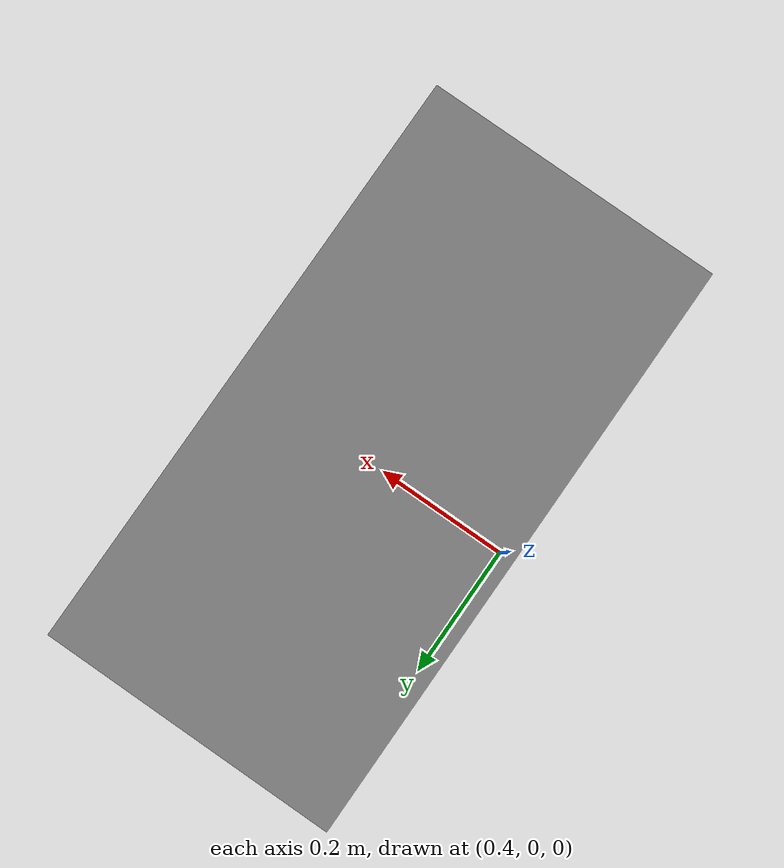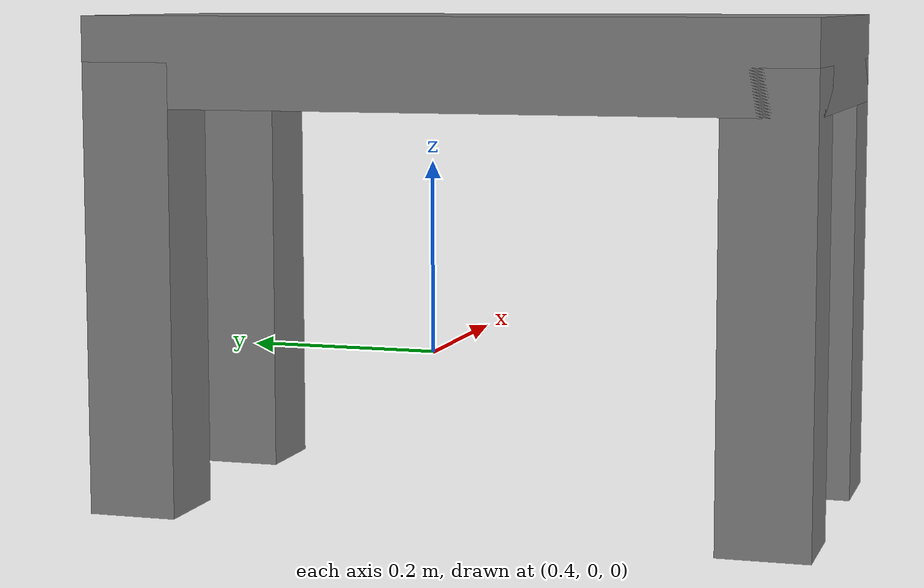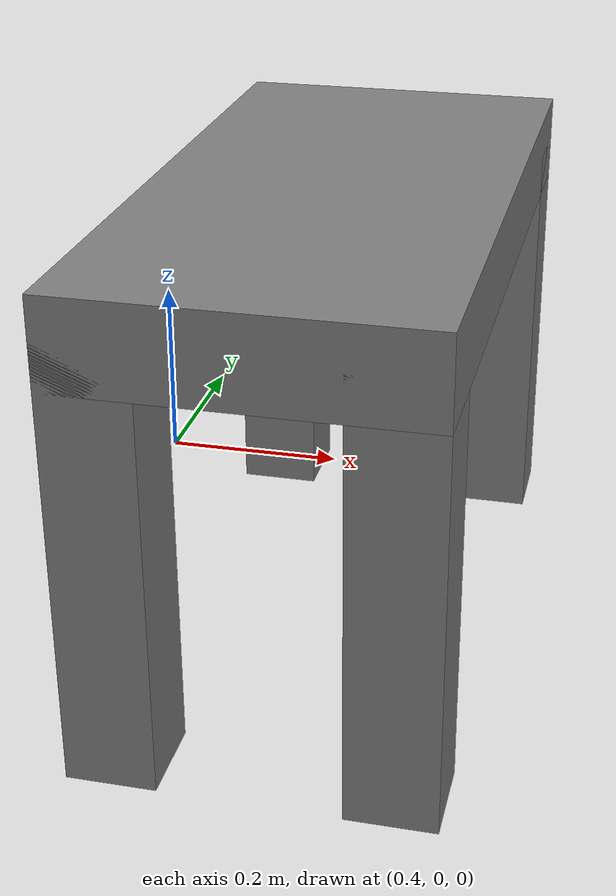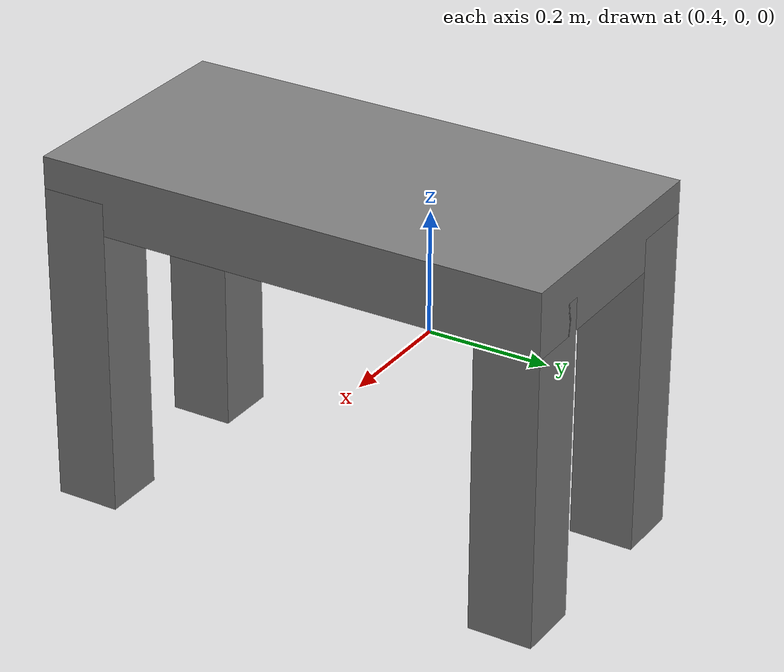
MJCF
<mujoco model="table">
	<asset>
		<!-- Define materials -->
		<material name="table_surface" rgba="0.5 0.5 0.5 1" />
		<material name="table_legs" rgba="0.5 0.5 0.5 1" />

		<!-- Define geom shapes -->
	</asset>
	<worldbody>
		<!-- Place the table in the world -->
		<body name="table" pos="0.6 0 0.3">
			<geom name="table_surface" type="box" material="table_surface" size="0.2 0.4 0.05" />
			<geom name="table_leg1" type="box" material="table_legs" size="0.05 0.05 0.25" pos="-0.15 -0.35 -0.25" />
			<geom name="table_leg2" type="box" material="table_legs" size="0.05 0.05 0.25" pos="0.15 -0.35 -0.25" />
			<geom name="table_leg3" type="box" material="table_legs" size="0.05 0.05 0.25" pos="-0.15 0.35 -0.25" />
			<geom name="table_leg4" type="box" material="table_legs" size="0.05 0.05 0.25" pos="0.15 0.35 -0.25" />
		</body>
	</worldbody>
</mujoco>
